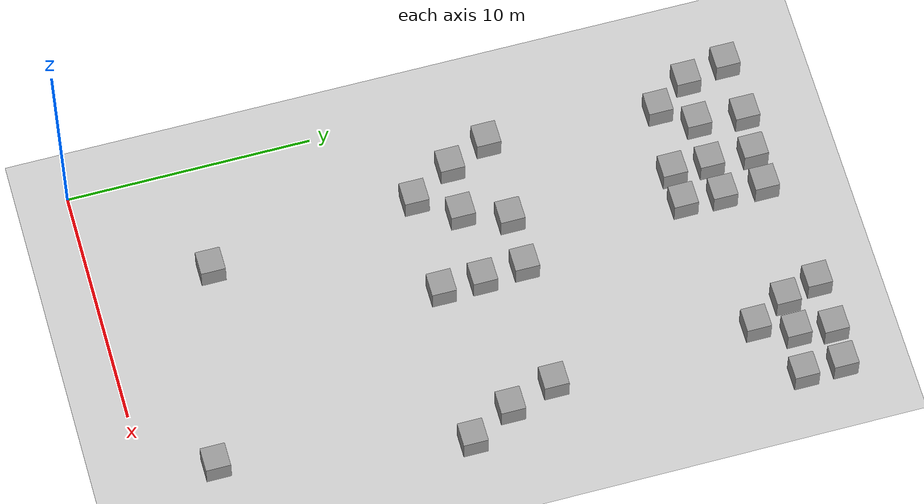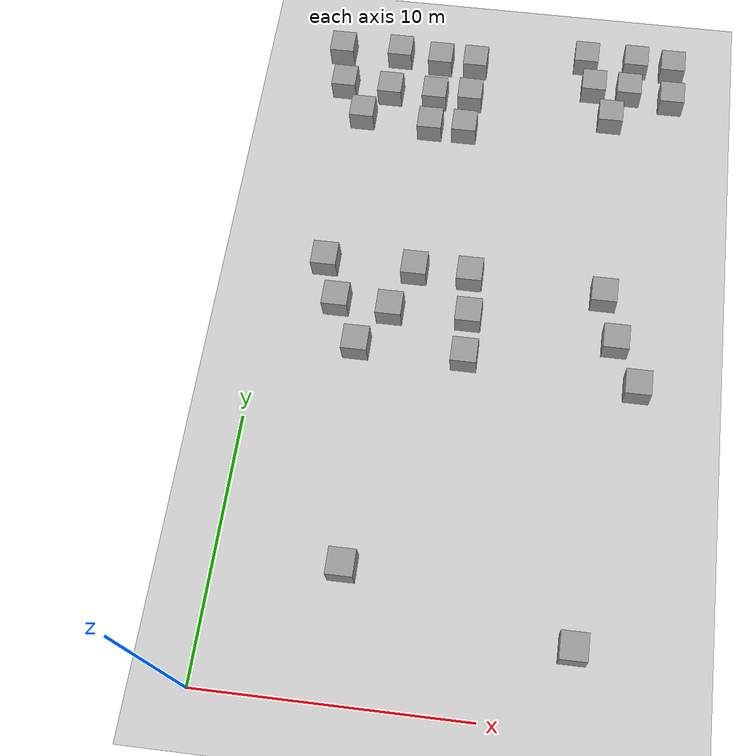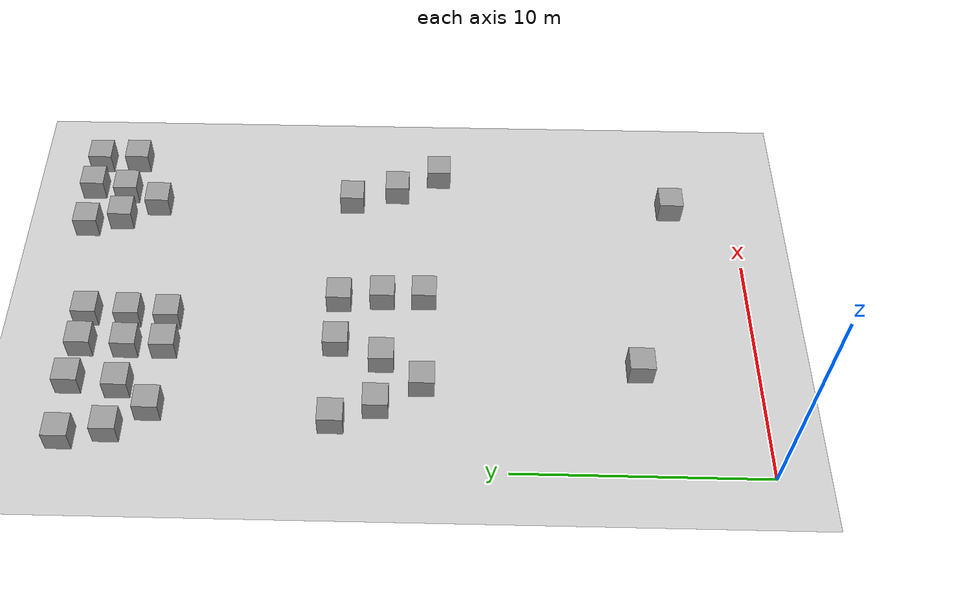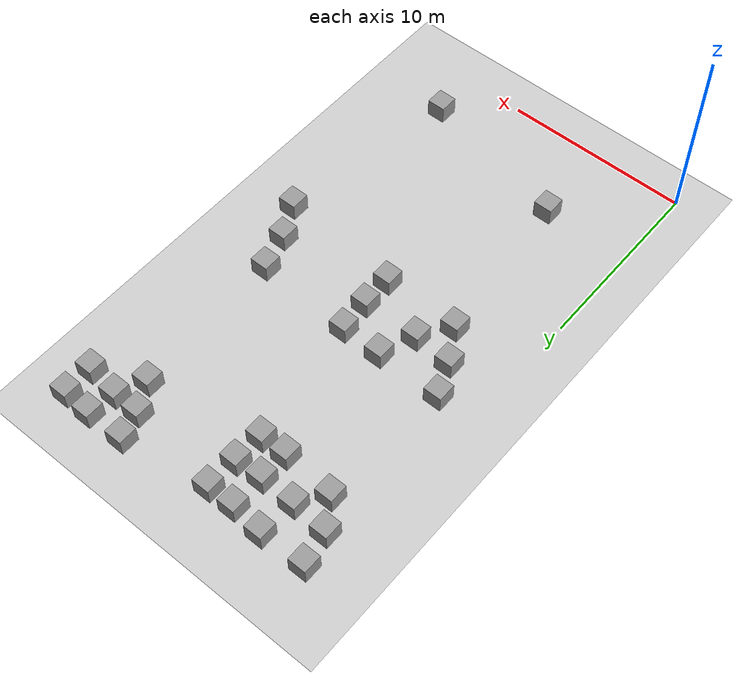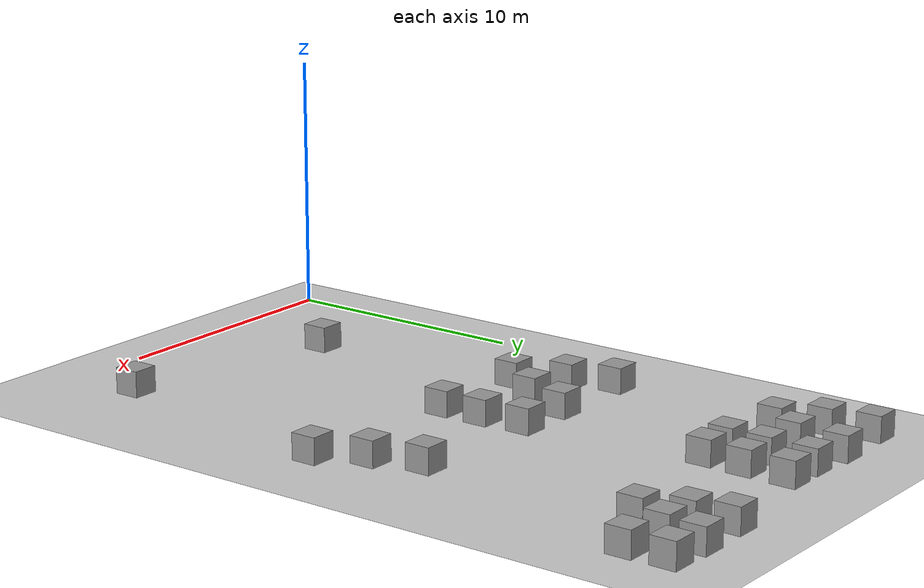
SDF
<sdf version="1.7">
 <world name="default">
  <model name="ground_plane">
   <static>1</static>
   <link name="link">
    <collision name="collision">
     <geometry><plane><normal>0 0 1</normal><size>100 100</size></plane></geometry>
     <surface>
      <contact><collide_bitmask>65535</collide_bitmask></contact>
      <friction><ode><mu>100</mu><mu2>50</mu2></ode></friction>
     </surface>
    </collision>
    <visual name="visual">
     <cast_shadows>0</cast_shadows>
     <geometry><plane><normal>0 0 1</normal><size>100 100</size></plane></geometry>
     <material>
      <script><uri>file://media/materials/scripts/gazebo.material</uri><name>Gazebo/Grey</name></script>
     </material>
    </visual>
   </link>
  </model>
  <model name="unit_box">
   <pose>4.67215 4.73048 0.499995 0 -1e-05 0</pose>
   <link name="link">
    <inertial>
     <mass>1</mass>
     <inertia>
      <ixx>0.166667</ixx>
      <ixy>0</ixy>
      <ixz>0</ixz>
      <iyy>0.166667</iyy>
      <iyz>0</iyz>
      <izz>0.166667</izz>
     </inertia>
    </inertial>
    <collision name="collision"><geometry><box><size>1 1 1</size></box></geometry></collision>
    <visual name="visual">
     <geometry><box><size>1 1 1</size></box></geometry>
     <material>
      <script><name>Gazebo/Grey</name><uri>file://media/materials/scripts/gazebo.material</uri></script>
     </material>
    </visual>
   </link>
  </model>
  <model name="unit_box_0">
   <pose>13.043 2.79597 0.499995 1e-05 -0 0</pose>
   <link name="link">
    <inertial>
     <mass>1</mass>
     <inertia>
      <ixx>0.166667</ixx>
      <ixy>0</ixy>
      <ixz>0</ixz>
      <iyy>0.166667</iyy>
      <iyz>0</iyz>
      <izz>0.166667</izz>
     </inertia>
    </inertial>
    <collision name="collision"><geometry><box><size>1 1 1</size></box></geometry></collision>
    <visual name="visual">
     <geometry><box><size>1 1 1</size></box></geometry>
     <material>
      <script><name>Gazebo/Grey</name><uri>file://media/materials/scripts/gazebo.material</uri></script>
     </material>
    </visual>
   </link>
  </model>
  <model name="unit_box_1_clone_9">
   <pose>13.1558 16.4643 0.499995 1e-05 -0 0</pose>
   <link name="link">
    <inertial>
     <mass>1</mass>
     <inertia>
      <ixx>0.166667</ixx>
      <ixy>0</ixy>
      <ixz>0</ixz>
      <iyy>0.166667</iyy>
      <iyz>0</iyz>
      <izz>0.166667</izz>
     </inertia>
    </inertial>
    <collision name="collision"><geometry><box><size>1 1 1</size></box></geometry></collision>
    <visual name="visual">
     <geometry><box><size>1 1 1</size></box></geometry>
     <material>
      <script><name>Gazebo/Grey</name><uri>file://media/materials/scripts/gazebo.material</uri></script>
     </material>
    </visual>
   </link>
  </model>
  <model name="unit_box_1_clone_11">
   <pose>13.7413 14.5337 0.499995 1e-05 -0 0</pose>
   <link name="link">
    <inertial>
     <mass>1</mass>
     <inertia>
      <ixx>0.166667</ixx>
      <ixy>0</ixy>
      <ixz>0</ixz>
      <iyy>0.166667</iyy>
      <iyz>0</iyz>
      <izz>0.166667</izz>
     </inertia>
    </inertial>
    <collision name="collision"><geometry><box><size>1 1 1</size></box></geometry></collision>
    <visual name="visual">
     <geometry><box><size>1 1 1</size></box></geometry>
     <material>
      <script><name>Gazebo/Grey</name><uri>file://media/materials/scripts/gazebo.material</uri></script>
     </material>
    </visual>
   </link>
  </model>
  <model name="unit_box_1_clone_13">
   <pose>14.6841 12.7445 0.499995 -1e-05 0 0</pose>
   <link name="link">
    <inertial>
     <mass>1</mass>
     <inertia>
      <ixx>0.166667</ixx>
      <ixy>0</ixy>
      <ixz>0</ixz>
      <iyy>0.166667</iyy>
      <iyz>0</iyz>
      <izz>0.166667</izz>
     </inertia>
    </inertial>
    <collision name="collision"><geometry><box><size>1 1 1</size></box></geometry></collision>
    <visual name="visual">
     <geometry><box><size>1 1 1</size></box></geometry>
     <material>
      <script><name>Gazebo/Grey</name><uri>file://media/materials/scripts/gazebo.material</uri></script>
     </material>
    </visual>
   </link>
  </model>
  <model name="unit_box_1_clone_14">
   <pose>2.08489 16.7896 0.499995 0 1e-05 0</pose>
   <link name="link">
    <inertial>
     <mass>1</mass>
     <inertia>
      <ixx>0.166667</ixx>
      <ixy>0</ixy>
      <ixz>0</ixz>
      <iyy>0.166667</iyy>
      <iyz>0</iyz>
      <izz>0.166667</izz>
     </inertia>
    </inertial>
    <collision name="collision"><geometry><box><size>1 1 1</size></box></geometry></collision>
    <visual name="visual">
     <geometry><box><size>1 1 1</size></box></geometry>
     <material>
      <script><name>Gazebo/Grey</name><uri>file://media/materials/scripts/gazebo.material</uri></script>
     </material>
    </visual>
   </link>
  </model>
  <model name="unit_box_1_clone_15">
   <pose>2.79815 15.0909 0.499995 0 1e-05 0</pose>
   <link name="link">
    <inertial>
     <mass>1</mass>
     <inertia>
      <ixx>0.166667</ixx>
      <ixy>0</ixy>
      <ixz>0</ixz>
      <iyy>0.166667</iyy>
      <iyz>0</iyz>
      <izz>0.166667</izz>
     </inertia>
    </inertial>
    <collision name="collision"><geometry><box><size>1 1 1</size></box></geometry></collision>
    <visual name="visual">
     <geometry><box><size>1 1 1</size></box></geometry>
     <material>
      <script><name>Gazebo/Grey</name><uri>file://media/materials/scripts/gazebo.material</uri></script>
     </material>
    </visual>
   </link>
  </model>
  <model name="unit_box_1_clone_16">
   <pose>3.84151 13.3265 0.499995 0 1e-05 0</pose>
   <link name="link">
    <inertial>
     <mass>1</mass>
     <inertia>
      <ixx>0.166667</ixx>
      <ixy>0</ixy>
      <ixz>0</ixz>
      <iyy>0.166667</iyy>
      <iyz>0</iyz>
      <izz>0.166667</izz>
     </inertia>
    </inertial>
    <collision name="collision"><geometry><box><size>1 1 1</size></box></geometry></collision>
    <visual name="visual">
     <geometry><box><size>1 1 1</size></box></geometry>
     <material>
      <script><name>Gazebo/Grey</name><uri>file://media/materials/scripts/gazebo.material</uri></script>
     </material>
    </visual>
   </link>
  </model>
  <model name="unit_box_1_clone_17">
   <pose>4.9272 14.9407 0.499995 1e-05 -0 0</pose>
   <link name="link">
    <inertial>
     <mass>1</mass>
     <inertia>
      <ixx>0.166667</ixx>
      <ixy>0</ixy>
      <ixz>0</ixz>
      <iyy>0.166667</iyy>
      <iyz>0</iyz>
      <izz>0.166667</izz>
     </inertia>
    </inertial>
    <collision name="collision"><geometry><box><size>1 1 1</size></box></geometry></collision>
    <visual name="visual">
     <geometry><box><size>1 1 1</size></box></geometry>
     <material>
      <script><name>Gazebo/Grey</name><uri>file://media/materials/scripts/gazebo.material</uri></script>
     </material>
    </visual>
   </link>
  </model>
  <model name="unit_box_1_clone_18">
   <pose>5.65343 16.785 0.499995 0 -1e-05 0</pose>
   <link name="link">
    <inertial>
     <mass>1</mass>
     <inertia>
      <ixx>0.166667</ixx>
      <ixy>0</ixy>
      <ixz>0</ixz>
      <iyy>0.166667</iyy>
      <iyz>0</iyz>
      <izz>0.166667</izz>
     </inertia>
    </inertial>
    <collision name="collision"><geometry><box><size>1 1 1</size></box></geometry></collision>
    <visual name="visual">
     <geometry><box><size>1 1 1</size></box></geometry>
     <material>
      <script><name>Gazebo/Grey</name><uri>file://media/materials/scripts/gazebo.material</uri></script>
     </material>
    </visual>
   </link>
  </model>
  <model name="unit_box_1_clone_19">
   <pose>7.85351 16.7659 0.499995 1e-05 -0 0</pose>
   <link name="link">
    <inertial>
     <mass>1</mass>
     <inertia>
      <ixx>0.166667</ixx>
      <ixy>0</ixy>
      <ixz>0</ixz>
      <iyy>0.166667</iyy>
      <iyz>0</iyz>
      <izz>0.166667</izz>
     </inertia>
    </inertial>
    <collision name="collision"><geometry><box><size>1 1 1</size></box></geometry></collision>
    <visual name="visual">
     <geometry><box><size>1 1 1</size></box></geometry>
     <material>
      <script><name>Gazebo/Grey</name><uri>file://media/materials/scripts/gazebo.material</uri></script>
     </material>
    </visual>
   </link>
  </model>
  <model name="unit_box_1_clone_20">
   <pose>8 15 0.499995 0 1e-05 0</pose>
   <link name="link">
    <inertial>
     <mass>1</mass>
     <inertia>
      <ixx>0.166667</ixx>
      <ixy>0</ixy>
      <ixz>0</ixz>
      <iyy>0.166667</iyy>
      <iyz>0</iyz>
      <izz>0.166667</izz>
     </inertia>
    </inertial>
    <collision name="collision"><geometry><box><size>1 1 1</size></box></geometry></collision>
    <visual name="visual">
     <geometry><box><size>1 1 1</size></box></geometry>
     <material>
      <script><name>Gazebo/Grey</name><uri>file://media/materials/scripts/gazebo.material</uri></script>
     </material>
    </visual>
   </link>
  </model>
  <model name="unit_box_1_clone_21">
   <pose>8.03413 13.2963 0.499995 0 1e-05 0</pose>
   <link name="link">
    <inertial>
     <mass>1</mass>
     <inertia>
      <ixx>0.166667</ixx>
      <ixy>0</ixy>
      <ixz>0</ixz>
      <iyy>0.166667</iyy>
      <iyz>0</iyz>
      <izz>0.166667</izz>
     </inertia>
    </inertial>
    <collision name="collision"><geometry><box><size>1 1 1</size></box></geometry></collision>
    <visual name="visual">
     <geometry><box><size>1 1 1</size></box></geometry>
     <material>
      <script><name>Gazebo/Grey</name><uri>file://media/materials/scripts/gazebo.material</uri></script>
     </material>
    </visual>
   </link>
  </model>
  <model name="unit_box_1_clone_22">
   <pose>1.1822 27.0628 0.499995 -1e-05 0 0</pose>
   <link name="link">
    <inertial>
     <mass>1</mass>
     <inertia>
      <ixx>0.166667</ixx>
      <ixy>0</ixy>
      <ixz>0</ixz>
      <iyy>0.166667</iyy>
      <iyz>0</iyz>
      <izz>0.166667</izz>
     </inertia>
    </inertial>
    <collision name="collision"><geometry><box><size>1 1 1</size></box></geometry></collision>
    <visual name="visual">
     <geometry><box><size>1 1 1</size></box></geometry>
     <material>
      <script><name>Gazebo/Grey</name><uri>file://media/materials/scripts/gazebo.material</uri></script>
     </material>
    </visual>
   </link>
  </model>
  <model name="unit_box_1_clone_23">
   <pose>1.52923 25.3163 0.499995 0 -1e-05 0</pose>
   <link name="link">
    <inertial>
     <mass>1</mass>
     <inertia>
      <ixx>0.166667</ixx>
      <ixy>0</ixy>
      <ixz>0</ixz>
      <iyy>0.166667</iyy>
      <iyz>0</iyz>
      <izz>0.166667</izz>
     </inertia>
    </inertial>
    <collision name="collision"><geometry><box><size>1 1 1</size></box></geometry></collision>
    <visual name="visual">
     <geometry><box><size>1 1 1</size></box></geometry>
     <material>
      <script><name>Gazebo/Grey</name><uri>file://media/materials/scripts/gazebo.material</uri></script>
     </material>
    </visual>
   </link>
  </model>
  <model name="unit_box_1_clone_24">
   <pose>2.51056 23.8512 0.499995 1e-05 -0 0</pose>
   <link name="link">
    <inertial>
     <mass>1</mass>
     <inertia>
      <ixx>0.166667</ixx>
      <ixy>0</ixy>
      <ixz>0</ixz>
      <iyy>0.166667</iyy>
      <iyz>0</iyz>
      <izz>0.166667</izz>
     </inertia>
    </inertial>
    <collision name="collision"><geometry><box><size>1 1 1</size></box></geometry></collision>
    <visual name="visual">
     <geometry><box><size>1 1 1</size></box></geometry>
     <material>
      <script><name>Gazebo/Grey</name><uri>file://media/materials/scripts/gazebo.material</uri></script>
     </material>
    </visual>
   </link>
  </model>
  <model name="unit_box_1_clone_25">
   <pose>3.50092 25.185 0.499995 1e-05 -0 0</pose>
   <link name="link">
    <inertial>
     <mass>1</mass>
     <inertia>
      <ixx>0.166667</ixx>
      <ixy>0</ixy>
      <ixz>0</ixz>
      <iyy>0.166667</iyy>
      <iyz>0</iyz>
      <izz>0.166667</izz>
     </inertia>
    </inertial>
    <collision name="collision"><geometry><box><size>1 1 1</size></box></geometry></collision>
    <visual name="visual">
     <geometry><box><size>1 1 1</size></box></geometry>
     <material>
      <script><name>Gazebo/Grey</name><uri>file://media/materials/scripts/gazebo.material</uri></script>
     </material>
    </visual>
   </link>
  </model>
  <model name="unit_box_1_clone_26">
   <pose>3.6678 27.1444 0.499995 1e-05 -0 0</pose>
   <link name="link">
    <inertial>
     <mass>1</mass>
     <inertia>
      <ixx>0.166667</ixx>
      <ixy>0</ixy>
      <ixz>0</ixz>
      <iyy>0.166667</iyy>
      <iyz>0</iyz>
      <izz>0.166667</izz>
     </inertia>
    </inertial>
    <collision name="collision"><geometry><box><size>1 1 1</size></box></geometry></collision>
    <visual name="visual">
     <geometry><box><size>1 1 1</size></box></geometry>
     <material>
      <script><name>Gazebo/Grey</name><uri>file://media/materials/scripts/gazebo.material</uri></script>
     </material>
    </visual>
   </link>
  </model>
  <model name="unit_box_1_clone_27">
   <pose>5.42956 26.9683 0.499995 0 1e-05 0</pose>
   <link name="link">
    <inertial>
     <mass>1</mass>
     <inertia>
      <ixx>0.166667</ixx>
      <ixy>0</ixy>
      <ixz>0</ixz>
      <iyy>0.166667</iyy>
      <iyz>0</iyz>
      <izz>0.166667</izz>
     </inertia>
    </inertial>
    <collision name="collision"><geometry><box><size>1 1 1</size></box></geometry></collision>
    <visual name="visual">
     <geometry><box><size>1 1 1</size></box></geometry>
     <material>
      <script><name>Gazebo/Grey</name><uri>file://media/materials/scripts/gazebo.material</uri></script>
     </material>
    </visual>
   </link>
  </model>
  <model name="unit_box_1_clone_28">
   <pose>5.3997 25.152 0.499995 -1e-05 0 0</pose>
   <link name="link">
    <inertial>
     <mass>1</mass>
     <inertia>
      <ixx>0.166667</ixx>
      <ixy>0</ixy>
      <ixz>0</ixz>
      <iyy>0.166667</iyy>
      <iyz>0</iyz>
      <izz>0.166667</izz>
     </inertia>
    </inertial>
    <collision name="collision"><geometry><box><size>1 1 1</size></box></geometry></collision>
    <visual name="visual">
     <geometry><box><size>1 1 1</size></box></geometry>
     <material>
      <script><name>Gazebo/Grey</name><uri>file://media/materials/scripts/gazebo.material</uri></script>
     </material>
    </visual>
   </link>
  </model>
  <model name="unit_box_1_clone_29">
   <pose>5.39117 23.6058 0.499995 -1e-05 0 0</pose>
   <link name="link">
    <inertial>
     <mass>1</mass>
     <inertia>
      <ixx>0.166667</ixx>
      <ixy>0</ixy>
      <ixz>0</ixz>
      <iyy>0.166667</iyy>
      <iyz>0</iyz>
      <izz>0.166667</izz>
     </inertia>
    </inertial>
    <collision name="collision"><geometry><box><size>1 1 1</size></box></geometry></collision>
    <visual name="visual">
     <geometry><box><size>1 1 1</size></box></geometry>
     <material>
      <script><name>Gazebo/Grey</name><uri>file://media/materials/scripts/gazebo.material</uri></script>
     </material>
    </visual>
   </link>
  </model>
  <model name="unit_box_1_clone_30">
   <pose>6.92731 26.9779 0.499995 -1e-05 -0 -0</pose>
   <link name="link">
    <inertial>
     <mass>1</mass>
     <inertia>
      <ixx>0.166667</ixx>
      <ixy>0</ixy>
      <ixz>0</ixz>
      <iyy>0.166667</iyy>
      <iyz>0</iyz>
      <izz>0.166667</izz>
     </inertia>
    </inertial>
    <collision name="collision"><geometry><box><size>1 1 1</size></box></geometry></collision>
    <visual name="visual">
     <geometry><box><size>1 1 1</size></box></geometry>
     <material>
      <script><name>Gazebo/Grey</name><uri>file://media/materials/scripts/gazebo.material</uri></script>
     </material>
    </visual>
   </link>
  </model>
  <model name="unit_box_1_clone_31">
   <pose>6.89119 25.2526 0.499995 1e-05 -0 0</pose>
   <link name="link">
    <inertial>
     <mass>1</mass>
     <inertia>
      <ixx>0.166667</ixx>
      <ixy>0</ixy>
      <ixz>0</ixz>
      <iyy>0.166667</iyy>
      <iyz>0</iyz>
      <izz>0.166667</izz>
     </inertia>
    </inertial>
    <collision name="collision"><geometry><box><size>1 1 1</size></box></geometry></collision>
    <visual name="visual">
     <geometry><box><size>1 1 1</size></box></geometry>
     <material>
      <script><name>Gazebo/Grey</name><uri>file://media/materials/scripts/gazebo.material</uri></script>
     </material>
    </visual>
   </link>
  </model>
  <model name="unit_box_1_clone_32">
   <pose>6.832 23.6315 0.499995 0 1e-05 0</pose>
   <link name="link">
    <inertial>
     <mass>1</mass>
     <inertia>
      <ixx>0.166667</ixx>
      <ixy>0</ixy>
      <ixz>0</ixz>
      <iyy>0.166667</iyy>
      <iyz>0</iyz>
      <izz>0.166667</izz>
     </inertia>
    </inertial>
    <collision name="collision"><geometry><box><size>1 1 1</size></box></geometry></collision>
    <visual name="visual">
     <geometry><box><size>1 1 1</size></box></geometry>
     <material>
      <script><name>Gazebo/Grey</name><uri>file://media/materials/scripts/gazebo.material</uri></script>
     </material>
    </visual>
   </link>
  </model>
  <model name="unit_box_1_clone_33">
   <pose>11.6368 27.7329 0.499995 -1e-05 0 0</pose>
   <link name="link">
    <inertial>
     <mass>1</mass>
     <inertia>
      <ixx>0.166667</ixx>
      <ixy>0</ixy>
      <ixz>0</ixz>
      <iyy>0.166667</iyy>
      <iyz>0</iyz>
      <izz>0.166667</izz>
     </inertia>
    </inertial>
    <collision name="collision"><geometry><box><size>1 1 1</size></box></geometry></collision>
    <visual name="visual">
     <geometry><box><size>1 1 1</size></box></geometry>
     <material>
      <script><name>Gazebo/Grey</name><uri>file://media/materials/scripts/gazebo.material</uri></script>
     </material>
    </visual>
   </link>
  </model>
  <model name="unit_box_1_clone_34">
   <pose>12.0485 26.3197 0.499995 -1e-05 0 0</pose>
   <link name="link">
    <inertial>
     <mass>1</mass>
     <inertia>
      <ixx>0.166667</ixx>
      <ixy>0</ixy>
      <ixz>0</ixz>
      <iyy>0.166667</iyy>
      <iyz>0</iyz>
      <izz>0.166667</izz>
     </inertia>
    </inertial>
    <collision name="collision"><geometry><box><size>1 1 1</size></box></geometry></collision>
    <visual name="visual">
     <geometry><box><size>1 1 1</size></box></geometry>
     <material>
      <script><name>Gazebo/Grey</name><uri>file://media/materials/scripts/gazebo.material</uri></script>
     </material>
    </visual>
   </link>
  </model>
  <model name="unit_box_1_clone_35">
   <pose>12.8539 24.8405 0.499995 -1e-05 -0 0</pose>
   <link name="link">
    <inertial>
     <mass>1</mass>
     <inertia>
      <ixx>0.166667</ixx>
      <ixy>0</ixy>
      <ixz>0</ixz>
      <iyy>0.166667</iyy>
      <iyz>0</iyz>
      <izz>0.166667</izz>
     </inertia>
    </inertial>
    <collision name="collision"><geometry><box><size>1 1 1</size></box></geometry></collision>
    <visual name="visual">
     <geometry><box><size>1 1 1</size></box></geometry>
     <material>
      <script><name>Gazebo/Grey</name><uri>file://media/materials/scripts/gazebo.material</uri></script>
     </material>
    </visual>
   </link>
  </model>
  <model name="unit_box_1_clone_36">
   <pose>13.5412 26.3055 0.499995 0 1e-05 0</pose>
   <link name="link">
    <inertial>
     <mass>1</mass>
     <inertia>
      <ixx>0.166667</ixx>
      <ixy>0</ixy>
      <ixz>0</ixz>
      <iyy>0.166667</iyy>
      <iyz>0</iyz>
      <izz>0.166667</izz>
     </inertia>
    </inertial>
    <collision name="collision"><geometry><box><size>1 1 1</size></box></geometry></collision>
    <visual name="visual">
     <geometry><box><size>1 1 1</size></box></geometry>
     <material>
      <script><name>Gazebo/Grey</name><uri>file://media/materials/scripts/gazebo.material</uri></script>
     </material>
    </visual>
   </link>
  </model>
  <model name="unit_box_1_clone_37">
   <pose>13.747 27.7773 0.5 0 -0 0</pose>
   <link name="link">
    <inertial>
     <mass>1</mass>
     <inertia>
      <ixx>0.166667</ixx>
      <ixy>0</ixy>
      <ixz>0</ixz>
      <iyy>0.166667</iyy>
      <iyz>0</iyz>
      <izz>0.166667</izz>
     </inertia>
    </inertial>
    <collision name="collision"><geometry><box><size>1 1 1</size></box></geometry></collision>
    <visual name="visual">
     <geometry><box><size>1 1 1</size></box></geometry>
     <material>
      <script><name>Gazebo/Grey</name><uri>file://media/materials/scripts/gazebo.material</uri></script>
     </material>
    </visual>
   </link>
  </model>
  <model name="unit_box_1_clone_38">
   <pose>15.3133 27.6838 0.499995 0 -1e-05 0</pose>
   <link name="link">
    <inertial>
     <mass>1</mass>
     <inertia>
      <ixx>0.166667</ixx>
      <ixy>0</ixy>
      <ixz>0</ixz>
      <iyy>0.166667</iyy>
      <iyz>0</iyz>
      <izz>0.166667</izz>
     </inertia>
    </inertial>
    <collision name="collision"><geometry><box><size>1 1 1</size></box></geometry></collision>
    <visual name="visual">
     <geometry><box><size>1 1 1</size></box></geometry>
     <material>
      <script><name>Gazebo/Grey</name><uri>file://media/materials/scripts/gazebo.material</uri></script>
     </material>
    </visual>
   </link>
  </model>
  <model name="unit_box_1_clone_39">
   <pose>15.3516 26.0623 0.499995 -1e-05 -0 0</pose>
   <link name="link">
    <inertial>
     <mass>1</mass>
     <inertia>
      <ixx>0.166667</ixx>
      <ixy>0</ixy>
      <ixz>0</ixz>
      <iyy>0.166667</iyy>
      <iyz>0</iyz>
      <izz>0.166667</izz>
     </inertia>
    </inertial>
    <collision name="collision"><geometry><box><size>1 1 1</size></box></geometry></collision>
    <visual name="visual">
     <geometry><box><size>1 1 1</size></box></geometry>
     <material>
      <script><name>Gazebo/Grey</name><uri>file://media/materials/scripts/gazebo.material</uri></script>
     </material>
    </visual>
   </link>
  </model>
 </world>
</sdf>
